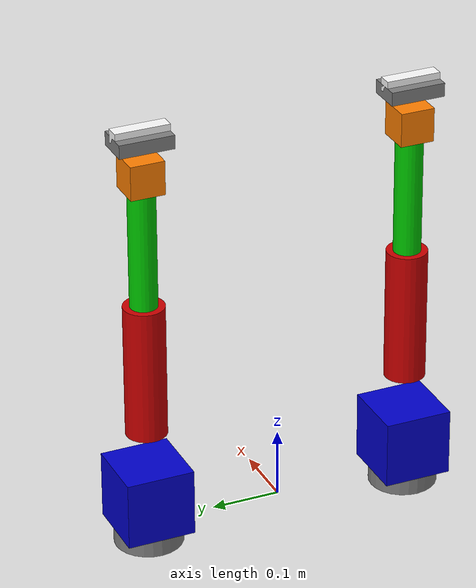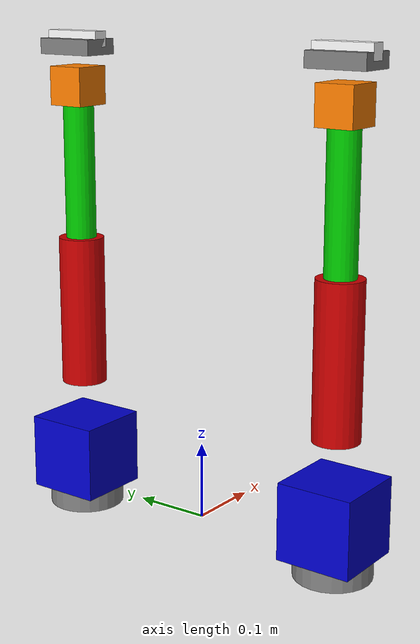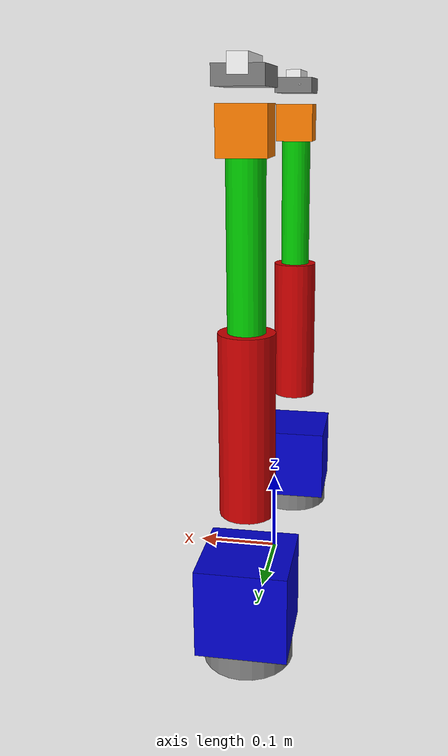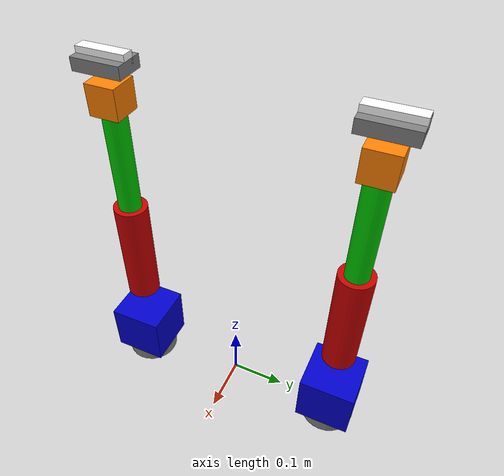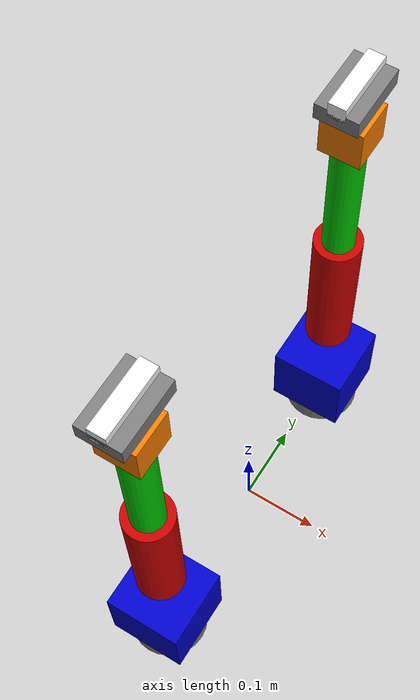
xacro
<?xml version="1.0"?>
<robot xmlns:xacro="http://www.ros.org/wiki/xacro" name="so100">

  <!-- Arguments -->
  <xacro:arg name="arm_side" default="both"/>
  <xacro:property name="arm_side" value="$(arg arm_side)"/>

  <!-- Common properties -->
  <xacro:property name="pi" value="3.14159265359"/>

  <!-- Include SO-100 arm macros -->
  <xacro:macro name="so100_arm" params="prefix parent_link *origin">

    <!-- Base link -->
    <link name="${prefix}_base_link">
      <visual>
        <geometry>
          <cylinder length="0.05" radius="0.05"/>
        </geometry>
        <material name="grey">
          <color rgba="0.5 0.5 0.5 1.0"/>
        </material>
      </visual>
      <collision>
        <geometry>
          <cylinder length="0.05" radius="0.05"/>
        </geometry>
      </collision>
      <inertial>
        <mass value="0.5"/>
        <inertia ixx="0.001" ixy="0.0" ixz="0.0" iyy="0.001" iyz="0.0" izz="0.001"/>
      </inertial>
    </link>

    <!-- Connect to parent link -->
    <joint name="${prefix}_base_joint" type="fixed">
      <xacro:insert_block name="origin"/>
      <parent link="${parent_link}"/>
      <child link="${prefix}_base_link"/>
    </joint>

    <!-- Shoulder pan joint -->
    <joint name="${prefix}_shoulder_pan_joint" type="revolute">
      <parent link="${prefix}_base_link"/>
      <child link="${prefix}_shoulder_link"/>
      <origin xyz="0 0 0.05" rpy="0 0 0"/>
      <axis xyz="0 0 1"/>
      <limit lower="${-pi}" upper="${pi}" effort="100" velocity="1.0"/>
    </joint>

    <!-- Shoulder link -->
    <link name="${prefix}_shoulder_link">
      <visual>
        <geometry>
          <box size="0.1 0.1 0.1"/>
        </geometry>
        <material name="blue">
          <color rgba="0.0 0.0 0.8 1.0"/>
        </material>
      </visual>
      <collision>
        <geometry>
          <box size="0.1 0.1 0.1"/>
        </geometry>
      </collision>
      <inertial>
        <mass value="0.5"/>
        <inertia ixx="0.001" ixy="0.0" ixz="0.0" iyy="0.001" iyz="0.0" izz="0.001"/>
      </inertial>
    </link>

    <!-- Shoulder lift joint -->
    <joint name="${prefix}_shoulder_lift_joint" type="revolute">
      <parent link="${prefix}_shoulder_link"/>
      <child link="${prefix}_upper_arm_link"/>
      <origin xyz="0 0 0.1" rpy="0 0 0"/>
      <axis xyz="0 1 0"/>
      <limit lower="${-pi/2}" upper="${pi/2}" effort="100" velocity="1.0"/>
    </joint>

    <!-- Upper arm link -->
    <link name="${prefix}_upper_arm_link">
      <visual>
        <geometry>
          <cylinder length="0.2" radius="0.03"/>
        </geometry>
        <origin xyz="0 0 0.1" rpy="0 0 0"/>
        <material name="red">
          <color rgba="0.8 0.0 0.0 1.0"/>
        </material>
      </visual>
      <collision>
        <geometry>
          <cylinder length="0.2" radius="0.03"/>
        </geometry>
        <origin xyz="0 0 0.1" rpy="0 0 0"/>
      </collision>
      <inertial>
        <mass value="0.5"/>
        <inertia ixx="0.001" ixy="0.0" ixz="0.0" iyy="0.001" iyz="0.0" izz="0.001"/>
      </inertial>
    </link>

    <!-- Elbow joint -->
    <joint name="${prefix}_elbow_flex_joint" type="revolute">
      <parent link="${prefix}_upper_arm_link"/>
      <child link="${prefix}_forearm_link"/>
      <origin xyz="0 0 0.2" rpy="0 0 0"/>
      <axis xyz="0 1 0"/>
      <limit lower="${-pi}" upper="${pi}" effort="100" velocity="1.0"/>
    </joint>

    <!-- Forearm link -->
    <link name="${prefix}_forearm_link">
      <visual>
        <geometry>
          <cylinder length="0.2" radius="0.02"/>
        </geometry>
        <origin xyz="0 0 0.1" rpy="0 0 0"/>
        <material name="green">
          <color rgba="0.0 0.8 0.0 1.0"/>
        </material>
      </visual>
      <collision>
        <geometry>
          <cylinder length="0.2" radius="0.02"/>
        </geometry>
        <origin xyz="0 0 0.1" rpy="0 0 0"/>
      </collision>
      <inertial>
        <mass value="0.5"/>
        <inertia ixx="0.001" ixy="0.0" ixz="0.0" iyy="0.001" iyz="0.0" izz="0.001"/>
      </inertial>
    </link>

    <!-- Wrist flex joint -->
    <joint name="${prefix}_wrist_flex_joint" type="revolute">
      <parent link="${prefix}_forearm_link"/>
      <child link="${prefix}_wrist_link"/>
      <origin xyz="0 0 0.2" rpy="0 0 0"/>
      <axis xyz="0 1 0"/>
      <limit lower="${-pi/2}" upper="${pi/2}" effort="100" velocity="1.0"/>
    </joint>

    <!-- Wrist link -->
    <link name="${prefix}_wrist_link">
      <visual>
        <geometry>
          <box size="0.05 0.05 0.05"/>
        </geometry>
        <material name="orange">
          <color rgba="1.0 0.5 0.0 1.0"/>
        </material>
      </visual>
      <collision>
        <geometry>
          <box size="0.05 0.05 0.05"/>
        </geometry>
      </collision>
      <inertial>
        <mass value="0.1"/>
        <inertia ixx="0.001" ixy="0.0" ixz="0.0" iyy="0.001" iyz="0.0" izz="0.001"/>
      </inertial>
    </link>

    <!-- Wrist roll joint -->
    <joint name="${prefix}_wrist_roll_joint" type="revolute">
      <parent link="${prefix}_wrist_link"/>
      <child link="${prefix}_hand_link"/>
      <origin xyz="0 0 0.05" rpy="0 0 0"/>
      <axis xyz="0 0 1"/>
      <limit lower="${-pi}" upper="${pi}" effort="100" velocity="1.0"/>
    </joint>

    <!-- Hand link -->
    <link name="${prefix}_hand_link">
      <visual>
        <geometry>
          <box size="0.05 0.08 0.02"/>
        </geometry>
        <material name="grey">
          <color rgba="0.5 0.5 0.5 1.0"/>
        </material>
      </visual>
      <collision>
        <geometry>
          <box size="0.05 0.08 0.02"/>
        </geometry>
      </collision>
      <inertial>
        <mass value="0.1"/>
        <inertia ixx="0.001" ixy="0.0" ixz="0.0" iyy="0.001" iyz="0.0" izz="0.001"/>
      </inertial>
    </link>

    <!-- Gripper joint -->
    <joint name="${prefix}_gripper_joint" type="prismatic">
      <parent link="${prefix}_hand_link"/>
      <child link="${prefix}_gripper_link"/>
      <origin xyz="0 0 0.01" rpy="0 0 0"/>
      <axis xyz="0 1 0"/>
      <limit lower="0.0" upper="0.04" effort="100" velocity="1.0"/>
    </joint>

    <!-- Gripper link -->
    <link name="${prefix}_gripper_link">
      <visual>
        <geometry>
          <box size="0.02 0.08 0.02"/>
        </geometry>
        <material name="white">
          <color rgba="1.0 1.0 1.0 1.0"/>
        </material>
      </visual>
      <collision>
        <geometry>
          <box size="0.02 0.08 0.02"/>
        </geometry>
      </collision>
      <inertial>
        <mass value="0.1"/>
        <inertia ixx="0.001" ixy="0.0" ixz="0.0" iyy="0.001" iyz="0.0" izz="0.001"/>
      </inertial>
    </link>

    <!-- ROS2 Control -->
    <ros2_control name="${prefix}_arm_controller" type="system">
      <hardware>
        <plugin>arm_control/WaveshareHardwareInterface</plugin>
        <param name="port">${prefix == 'left' ? '/dev/ttyUSB0' : '/dev/ttyUSB1'}</param>
        <param name="baudrate">1000000</param>
      </hardware>
      <joint name="${prefix}_shoulder_pan_joint">
        <command_interface name="position"/>
        <state_interface name="position"/>
        <state_interface name="velocity"/>
        <state_interface name="effort"/>
        <param name="id">1</param>
        <param name="model">sts3215</param>
      </joint>
      <joint name="${prefix}_shoulder_lift_joint">
        <command_interface name="position"/>
        <state_interface name="position"/>
        <state_interface name="velocity"/>
        <state_interface name="effort"/>
        <param name="id">2</param>
        <param name="model">sts3215</param>
      </joint>
      <joint name="${prefix}_elbow_flex_joint">
        <command_interface name="position"/>
        <state_interface name="position"/>
        <state_interface name="velocity"/>
        <state_interface name="effort"/>
        <param name="id">3</param>
        <param name="model">sts3215</param>
      </joint>
      <joint name="${prefix}_wrist_flex_joint">
        <command_interface name="position"/>
        <state_interface name="position"/>
        <state_interface name="velocity"/>
        <state_interface name="effort"/>
        <param name="id">4</param>
        <param name="model">sts3215</param>
      </joint>
      <joint name="${prefix}_wrist_roll_joint">
        <command_interface name="position"/>
        <state_interface name="position"/>
        <state_interface name="velocity"/>
        <state_interface name="effort"/>
        <param name="id">5</param>
        <param name="model">sts3215</param>
      </joint>
      <joint name="${prefix}_gripper_joint">
        <command_interface name="position"/>
        <state_interface name="position"/>
        <state_interface name="velocity"/>
        <state_interface name="effort"/>
        <param name="id">6</param>
        <param name="model">sts3215</param>
      </joint>
    </ros2_control>
  </xacro:macro>

  <!-- World link -->
  <link name="world"/>

  <!-- Include arms based on arm_side argument -->
  <xacro:if value="${arm_side == 'left' or arm_side == 'both'}">
    <xacro:so100_arm prefix="left" parent_link="world">
      <origin xyz="0 0.2 0" rpy="0 0 0"/>
    </xacro:so100_arm>
  </xacro:if>

  <xacro:if value="${arm_side == 'right' or arm_side == 'both'}">
    <xacro:so100_arm prefix="right" parent_link="world">
      <origin xyz="0 -0.2 0" rpy="0 0 0"/>
    </xacro:so100_arm>
  </xacro:if>

</robot>
